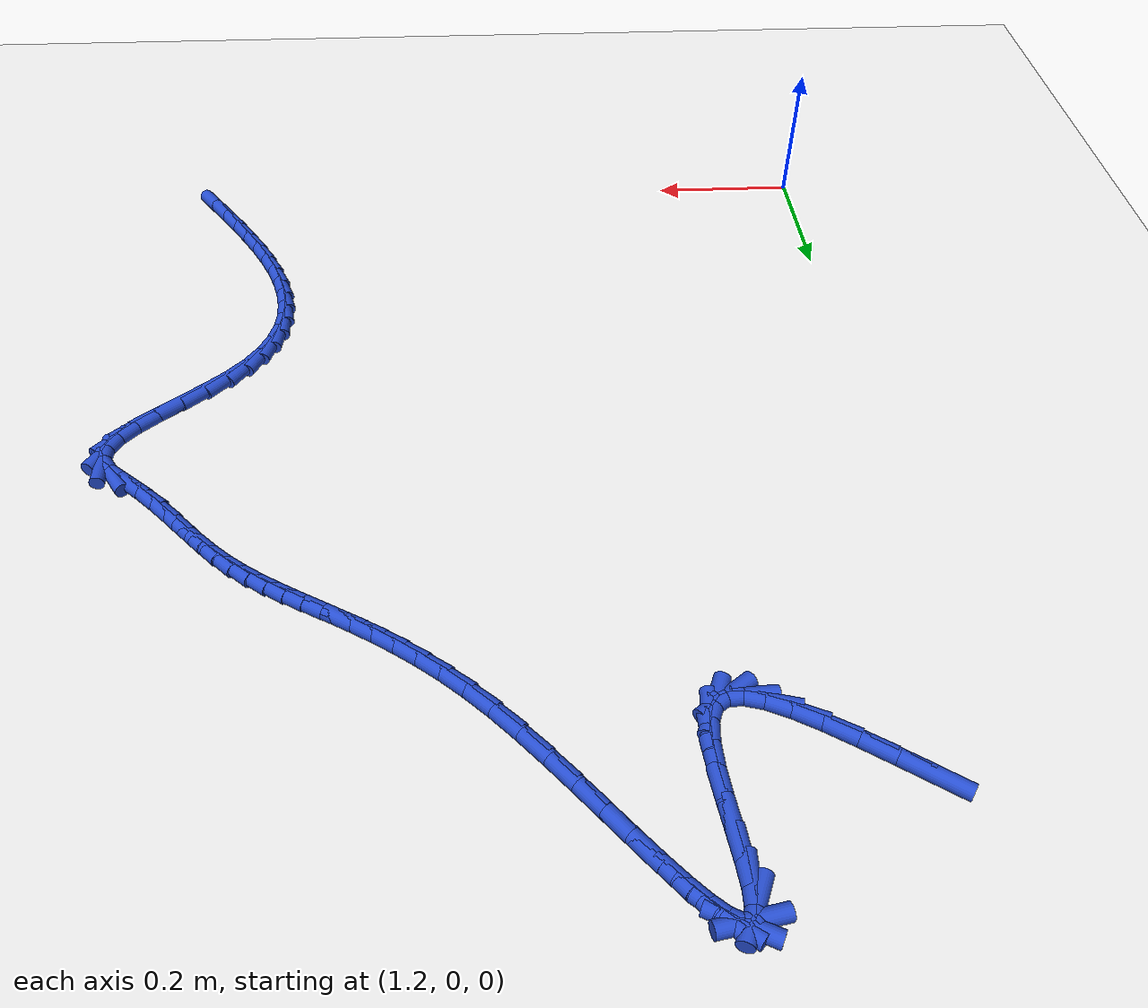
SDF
<sdf version="1.6">
 <world name="default">
  <model name="ground_plane">
   <static>1</static>
   <link name="link">
    <collision name="collision">
     <geometry><plane><normal>0 0 1</normal><size>100 100</size></plane></geometry>
     <surface><friction><ode><mu>100</mu><mu2>50</mu2></ode></friction></surface>
    </collision>
    <visual name="visual">
     <cast_shadows>0</cast_shadows>
     <geometry><plane><normal>0 0 1</normal><size>100 100</size></plane></geometry>
     <material>
      <script><uri>file://media/materials/scripts/gazebo.material</uri><name>Gazebo/WhiteGlow</name></script>
     </material>
    </visual>
   </link>
  </model>
  <model name="line">
   <link name="link_74">
    <pose>1.2723861363271114 1.1038740318503348 0.01 0 1.57 -0.6119505003149199</pose>
    <collision name="collision">
     <geometry><cylinder><radius>0.01</radius><length>0.08</length></cylinder></geometry>
    </collision>
    <visual name="visual">
     <material>
      <script><name>Gazebo/Blue</name><uri>file://media/materials/scripts/gazebo.material</uri></script>
     </material>
     <geometry><cylinder><radius>0.01</radius><length>0.08</length></cylinder></geometry>
    </visual>
   </link>
   <link name="link_75">
    <pose>1.3068017071767173 1.0797202851298688 0.01 0 1.57 -0.6044503724012126</pose>
    <collision name="collision">
     <geometry><cylinder><radius>0.01</radius><length>0.08</length></cylinder></geometry>
    </collision>
    <visual name="visual">
     <material>
      <script><name>Gazebo/Blue</name><uri>file://media/materials/scripts/gazebo.material</uri></script>
     </material>
     <geometry><cylinder><radius>0.01</radius><length>0.08</length></cylinder></geometry>
    </visual>
   </link>
   <link name="link_76">
    <pose>1.340529373568377 1.056424918402543 0.01 0 1.57 -0.578882292504587</pose>
    <collision name="collision">
     <geometry><cylinder><radius>0.01</radius><length>0.08</length></cylinder></geometry>
    </collision>
    <visual name="visual">
     <material>
      <script><name>Gazebo/Blue</name><uri>file://media/materials/scripts/gazebo.material</uri></script>
     </material>
     <geometry><cylinder><radius>0.01</radius><length>0.08</length></cylinder></geometry>
    </visual>
   </link>
   <link name="link_77">
    <pose>1.3728074712310607 1.0353288530888167 0.01 0 1.57 -0.5284921865191576</pose>
    <collision name="collision">
     <geometry><cylinder><radius>0.01</radius><length>0.08</length></cylinder></geometry>
    </collision>
    <visual name="visual">
     <material>
      <script><name>Gazebo/Blue</name><uri>file://media/materials/scripts/gazebo.material</uri></script>
     </material>
     <geometry><cylinder><radius>0.01</radius><length>0.08</length></cylinder></geometry>
    </visual>
   </link>
   <link name="link_78">
    <pose>1.402874335893737 1.0177730106091518 0.01 0 1.57 -0.43756166036817484</pose>
    <collision name="collision">
     <geometry><cylinder><radius>0.01</radius><length>0.08</length></cylinder></geometry>
    </collision>
    <visual name="visual">
     <material>
      <script><name>Gazebo/Blue</name><uri>file://media/materials/scripts/gazebo.material</uri></script>
     </material>
     <geometry><cylinder><radius>0.01</radius><length>0.08</length></cylinder></geometry>
    </visual>
   </link>
   <link name="link_79">
    <pose>1.4299683032853765 1.0050983123840094 0.01 0 1.57 -0.26951191261038004</pose>
    <collision name="collision">
     <geometry><cylinder><radius>0.01</radius><length>0.08</length></cylinder></geometry>
    </collision>
    <visual name="visual">
     <material>
      <script><name>Gazebo/Blue</name><uri>file://media/materials/scripts/gazebo.material</uri></script>
     </material>
     <geometry><cylinder><radius>0.01</radius><length>0.08</length></cylinder></geometry>
    </visual>
   </link>
   <link name="link_80">
    <pose>1.453327709134947 0.9986456798338501 0.01 0 1.57 0.058795747686479695</pose>
    <collision name="collision">
     <geometry><cylinder><radius>0.01</radius><length>0.08</length></cylinder></geometry>
    </collision>
    <visual name="visual">
     <material>
      <script><name>Gazebo/Blue</name><uri>file://media/materials/scripts/gazebo.material</uri></script>
     </material>
     <geometry><cylinder><radius>0.01</radius><length>0.08</length></cylinder></geometry>
    </visual>
   </link>
   <link name="link_81">
    <pose>1.472190889171419 0.9997560343791351 0.01 0 1.57 0.6345174181482096</pose>
    <collision name="collision">
     <geometry><cylinder><radius>0.01</radius><length>0.08</length></cylinder></geometry>
    </collision>
    <visual name="visual">
     <material>
      <script><name>Gazebo/Blue</name><uri>file://media/materials/scripts/gazebo.material</uri></script>
     </material>
     <geometry><cylinder><radius>0.01</radius><length>0.08</length></cylinder></geometry>
    </visual>
   </link>
   <link name="link_82">
    <pose>1.4857961791979561 1.0097702972987173 0.01 0 1.57 1.186503560602105</pose>
    <collision name="collision">
     <geometry><cylinder><radius>0.01</radius><length>0.08</length></cylinder></geometry>
    </collision>
    <visual name="visual">
     <material>
      <script><name>Gazebo/Blue</name><uri>file://media/materials/scripts/gazebo.material</uri></script>
     </material>
     <geometry><cylinder><radius>0.01</radius><length>0.08</length></cylinder></geometry>
    </visual>
   </link>
   <link name="link_83">
    <pose>1.4937245086214528 1.0293755176069175 0.01 0 1.57 1.4549673758504158</pose>
    <collision name="collision">
     <geometry><cylinder><radius>0.01</radius><length>0.08</length></cylinder></geometry>
    </collision>
    <visual name="visual">
     <material>
      <script><name>Gazebo/Blue</name><uri>file://media/materials/scripts/gazebo.material</uri></script>
     </material>
     <geometry><cylinder><radius>0.01</radius><length>0.08</length></cylinder></geometry>
    </visual>
   </link>
   <link name="link_84">
    <pose>1.4969025685845991 1.0566902308836934 0.01 0 1.57 -1.5611042230392178</pose>
    <collision name="collision">
     <geometry><cylinder><radius>0.01</radius><length>0.08</length></cylinder></geometry>
    </collision>
    <visual name="visual">
     <material>
      <script><name>Gazebo/Blue</name><uri>file://media/materials/scripts/gazebo.material</uri></script>
     </material>
     <geometry><cylinder><radius>0.01</radius><length>0.08</length></cylinder></geometry>
    </visual>
   </link>
   <link name="link_85">
    <pose>1.4965874476133965 1.0892023780835693 0.01 0 1.57 -1.498440108289049</pose>
    <collision name="collision">
     <geometry><cylinder><radius>0.01</radius><length>0.08</length></cylinder></geometry>
    </collision>
    <visual name="visual">
     <material>
      <script><name>Gazebo/Blue</name><uri>file://media/materials/scripts/gazebo.material</uri></script>
     </material>
     <geometry><cylinder><radius>0.01</radius><length>0.08</length></cylinder></geometry>
    </visual>
   </link>
   <link name="link_86">
    <pose>1.4940362342338436 1.124399900161071 0.01 0 1.57 -1.4713198855890846</pose>
    <collision name="collision">
     <geometry><cylinder><radius>0.01</radius><length>0.08</length></cylinder></geometry>
    </collision>
    <visual name="visual">
     <material>
      <script><name>Gazebo/Blue</name><uri>file://media/materials/scripts/gazebo.material</uri></script>
     </material>
     <geometry><cylinder><radius>0.01</radius><length>0.08</length></cylinder></geometry>
    </visual>
   </link>
   <link name="link_87">
    <pose>1.4905060169719413 1.159770738070722 0.01 0 1.57 -1.4726588773470441</pose>
    <collision name="collision">
     <geometry><cylinder><radius>0.01</radius><length>0.08</length></cylinder></geometry>
    </collision>
    <visual name="visual">
     <material>
      <script><name>Gazebo/Blue</name><uri>file://media/materials/scripts/gazebo.material</uri></script>
     </material>
     <geometry><cylinder><radius>0.01</radius><length>0.08</length></cylinder></geometry>
    </visual>
   </link>
   <link name="link_88">
    <pose>1.4872538843536889 1.1928028327670472 0.01 0 1.57 -1.5099460386976982</pose>
    <collision name="collision">
     <geometry><cylinder><radius>0.01</radius><length>0.08</length></cylinder></geometry>
    </collision>
    <visual name="visual">
     <material>
      <script><name>Gazebo/Blue</name><uri>file://media/materials/scripts/gazebo.material</uri></script>
     </material>
     <geometry><cylinder><radius>0.01</radius><length>0.08</length></cylinder></geometry>
    </visual>
   </link>
   <link name="link_89">
    <pose>1.4855369249050865 1.220984125204571 0.01 0 1.57 1.5191907321444418</pose>
    <collision name="collision">
     <geometry><cylinder><radius>0.01</radius><length>0.08</length></cylinder></geometry>
    </collision>
    <visual name="visual">
     <material>
      <script><name>Gazebo/Blue</name><uri>file://media/materials/scripts/gazebo.material</uri></script>
     </material>
     <geometry><cylinder><radius>0.01</radius><length>0.08</length></cylinder></geometry>
    </visual>
   </link>
   <link name="link_90">
    <pose>1.486612227152135 1.241802556337818 0.01 0 1.57 1.1539356549875914</pose>
    <collision name="collision">
     <geometry><cylinder><radius>0.01</radius><length>0.08</length></cylinder></geometry>
    </collision>
    <visual name="visual">
     <material>
      <script><name>Gazebo/Blue</name><uri>file://media/materials/scripts/gazebo.material</uri></script>
     </material>
     <geometry><cylinder><radius>0.01</radius><length>0.08</length></cylinder></geometry>
    </visual>
   </link>
   <link name="link_91">
    <pose>1.4915960642595616 1.2530575189170379 0.01 0 1.57 0.19783057746465163</pose>
    <collision name="collision">
     <geometry><cylinder><radius>0.01</radius><length>0.08</length></cylinder></geometry>
    </collision>
    <visual name="visual">
     <material>
      <script><name>Gazebo/Blue</name><uri>file://media/materials/scripts/gazebo.material</uri></script>
     </material>
     <geometry><cylinder><radius>0.01</radius><length>0.08</length></cylinder></geometry>
    </visual>
   </link>
   <link name="link_92">
    <pose>1.5005619505627554 1.2548547528620912 0.01 0 1.57 -0.478990189696421</pose>
    <collision name="collision">
     <geometry><cylinder><radius>0.01</radius><length>0.08</length></cylinder></geometry>
    </collision>
    <visual name="visual">
     <material>
      <script><name>Gazebo/Blue</name><uri>file://media/materials/scripts/gazebo.material</uri></script>
     </material>
     <geometry><cylinder><radius>0.01</radius><length>0.08</length></cylinder></geometry>
    </visual>
   </link>
   <link name="link_93">
    <pose>1.513115231269533 1.248335482532669 0.01 0 1.57 -0.7157208563802289</pose>
    <collision name="collision">
     <geometry><cylinder><radius>0.01</radius><length>0.08</length></cylinder></geometry>
    </collision>
    <visual name="visual">
     <material>
      <script><name>Gazebo/Blue</name><uri>file://media/materials/scripts/gazebo.material</uri></script>
     </material>
     <geometry><cylinder><radius>0.01</radius><length>0.08</length></cylinder></geometry>
    </visual>
   </link>
   <link name="link_94">
    <pose>1.528859026011163 1.234645854761447 0.01 0 1.57 -0.8161432700635202</pose>
    <collision name="collision">
     <geometry><cylinder><radius>0.01</radius><length>0.08</length></cylinder></geometry>
    </collision>
    <visual name="visual">
     <material>
      <script><name>Gazebo/Blue</name><uri>file://media/materials/scripts/gazebo.material</uri></script>
     </material>
     <geometry><cylinder><radius>0.01</radius><length>0.08</length></cylinder></geometry>
    </visual>
   </link>
   <link name="link_95">
    <pose>1.5473964544189154 1.2149320163811033 0.01 0 1.57 -0.8655693578644497</pose>
    <collision name="collision">
     <geometry><cylinder><radius>0.01</radius><length>0.08</length></cylinder></geometry>
    </collision>
    <visual name="visual">
     <material>
      <script><name>Gazebo/Blue</name><uri>file://media/materials/scripts/gazebo.material</uri></script>
     </material>
     <geometry><cylinder><radius>0.01</radius><length>0.08</length></cylinder></geometry>
    </visual>
   </link>
   <link name="link_96">
    <pose>1.5683306361240594 1.1903401142243148 0.01 0 1.57 -0.8901631645465553</pose>
    <collision name="collision">
     <geometry><cylinder><radius>0.01</radius><length>0.08</length></cylinder></geometry>
    </collision>
    <visual name="visual">
     <material>
      <script><name>Gazebo/Blue</name><uri>file://media/materials/scripts/gazebo.material</uri></script>
     </material>
     <geometry><cylinder><radius>0.01</radius><length>0.08</length></cylinder></geometry>
    </visual>
   </link>
   <link name="link_97">
    <pose>1.591264690757864 1.162016295123759 0.01 0 1.57 -0.8998271730030002</pose>
    <collision name="collision">
     <geometry><cylinder><radius>0.01</radius><length>0.08</length></cylinder></geometry>
    </collision>
    <visual name="visual">
     <material>
      <script><name>Gazebo/Blue</name><uri>file://media/materials/scripts/gazebo.material</uri></script>
     </material>
     <geometry><cylinder><radius>0.01</radius><length>0.08</length></cylinder></geometry>
    </visual>
   </link>
   <link name="link_98">
    <pose>1.6158017379515988 1.1311067059121118 0.01 0 1.57 -0.8986281213404743</pose>
    <collision name="collision">
     <geometry><cylinder><radius>0.01</radius><length>0.08</length></cylinder></geometry>
    </collision>
    <visual name="visual">
     <material>
      <script><name>Gazebo/Blue</name><uri>file://media/materials/scripts/gazebo.material</uri></script>
     </material>
     <geometry><cylinder><radius>0.01</radius><length>0.08</length></cylinder></geometry>
    </visual>
   </link>
   <link name="link_99">
    <pose>1.6415448973365334 1.098757493422052 0.01 0 1.57 -0.8879226271365618</pose>
    <collision name="collision">
     <geometry><cylinder><radius>0.01</radius><length>0.08</length></cylinder></geometry>
    </collision>
    <visual name="visual">
     <material>
      <script><name>Gazebo/Blue</name><uri>file://media/materials/scripts/gazebo.material</uri></script>
     </material>
     <geometry><cylinder><radius>0.01</radius><length>0.08</length></cylinder></geometry>
    </visual>
   </link>
   <link name="link_100">
    <pose>1.6680972885439367 1.0661148044862558 0.01 0 1.57 -0.867339971076115</pose>
    <collision name="collision">
     <geometry><cylinder><radius>0.01</radius><length>0.08</length></cylinder></geometry>
    </collision>
    <visual name="visual">
     <material>
      <script><name>Gazebo/Blue</name><uri>file://media/materials/scripts/gazebo.material</uri></script>
     </material>
     <geometry><cylinder><radius>0.01</radius><length>0.08</length></cylinder></geometry>
    </visual>
   </link>
   <link name="link_101">
    <pose>1.6950620312050781 1.0343247859374014 0.01 0 1.57 -0.8348718953270552</pose>
    <collision name="collision">
     <geometry><cylinder><radius>0.01</radius><length>0.08</length></cylinder></geometry>
    </collision>
    <visual name="visual">
     <material>
      <script><name>Gazebo/Blue</name><uri>file://media/materials/scripts/gazebo.material</uri></script>
     </material>
     <geometry><cylinder><radius>0.01</radius><length>0.08</length></cylinder></geometry>
    </visual>
   </link>
   <link name="link_102">
    <pose>1.7220422449512274 1.0045335846081644 0.01 0 1.57 -0.7880313874073062</pose>
    <collision name="collision">
     <geometry><cylinder><radius>0.01</radius><length>0.08</length></cylinder></geometry>
    </collision>
    <visual name="visual">
     <material>
      <script><name>Gazebo/Blue</name><uri>file://media/materials/scripts/gazebo.material</uri></script>
     </material>
     <geometry><cylinder><radius>0.01</radius><length>0.08</length></cylinder></geometry>
    </visual>
   </link>
   <link name="link_103">
    <pose>1.7486719073520927 0.9777633078804603 0.01 0 1.57 -0.7360472201844758</pose>
    <collision name="collision">
     <geometry><cylinder><radius>0.01</radius><length>0.08</length></cylinder></geometry>
    </collision>
    <visual name="visual">
     <material>
      <script><name>Gazebo/Blue</name><uri>file://media/materials/scripts/gazebo.material</uri></script>
     </material>
     <geometry><cylinder><radius>0.01</radius><length>0.08</length></cylinder></geometry>
    </visual>
   </link>
   <link name="link_104">
    <pose>1.774824756588054 0.9540722989974864 0.01 0 1.57 -0.6859232634885968</pose>
    <collision name="collision">
     <geometry><cylinder><radius>0.01</radius><length>0.08</length></cylinder></geometry>
    </collision>
    <visual name="visual">
     <material>
      <script><name>Gazebo/Blue</name><uri>file://media/materials/scripts/gazebo.material</uri></script>
     </material>
     <geometry><cylinder><radius>0.01</radius><length>0.08</length></cylinder></geometry>
    </visual>
   </link>
   <link name="link_105">
    <pose>1.8004867480712834 0.9330678223390473 0.01 0 1.57 -0.6395451484874632</pose>
    <collision name="collision">
     <geometry><cylinder><radius>0.01</radius><length>0.08</length></cylinder></geometry>
    </collision>
    <visual name="visual">
     <material>
      <script><name>Gazebo/Blue</name><uri>file://media/materials/scripts/gazebo.material</uri></script>
     </material>
     <geometry><cylinder><radius>0.01</radius><length>0.08</length></cylinder></geometry>
    </visual>
   </link>
   <link name="link_106">
    <pose>1.825644476833179 0.9143545712117832 0.01 0 1.57 -0.5988977735845974</pose>
    <collision name="collision">
     <geometry><cylinder><radius>0.01</radius><length>0.08</length></cylinder></geometry>
    </collision>
    <visual name="visual">
     <material>
      <script><name>Gazebo/Blue</name><uri>file://media/materials/scripts/gazebo.material</uri></script>
     </material>
     <geometry><cylinder><radius>0.01</radius><length>0.08</length></cylinder></geometry>
    </visual>
   </link>
   <link name="link_107">
    <pose>1.8502845379051402 0.897537238922335 0.01 0 1.57 -0.5659800625150856</pose>
    <collision name="collision">
     <geometry><cylinder><radius>0.01</radius><length>0.08</length></cylinder></geometry>
    </collision>
    <visual name="visual">
     <material>
      <script><name>Gazebo/Blue</name><uri>file://media/materials/scripts/gazebo.material</uri></script>
     </material>
     <geometry><cylinder><radius>0.01</radius><length>0.08</length></cylinder></geometry>
    </visual>
   </link>
   <link name="link_108">
    <pose>1.8743935263185643 0.8822205187773429 0.01 0 1.57 -0.5426851598940916</pose>
    <collision name="collision">
     <geometry><cylinder><radius>0.01</radius><length>0.08</length></cylinder></geometry>
    </collision>
    <visual name="visual">
     <material>
      <script><name>Gazebo/Blue</name><uri>file://media/materials/scripts/gazebo.material</uri></script>
     </material>
     <geometry><cylinder><radius>0.01</radius><length>0.08</length></cylinder></geometry>
    </visual>
   </link>
   <link name="link_109">
    <pose>1.8979580371048503 0.8680091040834471 0.01 0 1.57 -0.5306934967594604</pose>
    <collision name="collision">
     <geometry><cylinder><radius>0.01</radius><length>0.08</length></cylinder></geometry>
    </collision>
    <visual name="visual">
     <material>
      <script><name>Gazebo/Blue</name><uri>file://media/materials/scripts/gazebo.material</uri></script>
     </material>
     <geometry><cylinder><radius>0.01</radius><length>0.08</length></cylinder></geometry>
    </visual>
   </link>
   <link name="link_110">
    <pose>1.920964665295395 0.8545076881472875 0.01 0 1.57 -0.5313751259177955</pose>
    <collision name="collision">
     <geometry><cylinder><radius>0.01</radius><length>0.08</length></cylinder></geometry>
    </collision>
    <visual name="visual">
     <material>
      <script><name>Gazebo/Blue</name><uri>file://media/materials/scripts/gazebo.material</uri></script>
     </material>
     <geometry><cylinder><radius>0.01</radius><length>0.08</length></cylinder></geometry>
    </visual>
   </link>
   <link name="link_111">
    <pose>1.9434000059215981 0.8413209642755052 0.01 0 1.57 -0.545684265799643</pose>
    <collision name="collision">
     <geometry><cylinder><radius>0.01</radius><length>0.08</length></cylinder></geometry>
    </collision>
    <visual name="visual">
     <material>
      <script><name>Gazebo/Blue</name><uri>file://media/materials/scripts/gazebo.material</uri></script>
     </material>
     <geometry><cylinder><radius>0.01</radius><length>0.08</length></cylinder></geometry>
    </visual>
   </link>
   <link name="link_112">
    <pose>1.9652506540148573 0.82805362577474 0.01 0 1.57 -0.5740264924574382</pose>
    <collision name="collision">
     <geometry><cylinder><radius>0.01</radius><length>0.08</length></cylinder></geometry>
    </collision>
    <visual name="visual">
     <material>
      <script><name>Gazebo/Blue</name><uri>file://media/materials/scripts/gazebo.material</uri></script>
     </material>
     <geometry><cylinder><radius>0.01</radius><length>0.08</length></cylinder></geometry>
    </visual>
   </link>
   <link name="link_113">
    <pose>1.9865032046065707 0.8143103659516325 0.01 0 1.57 -0.6160951310143732</pose>
    <collision name="collision">
     <geometry><cylinder><radius>0.01</radius><length>0.08</length></cylinder></geometry>
    </collision>
    <visual name="visual">
     <material>
      <script><name>Gazebo/Blue</name><uri>file://media/materials/scripts/gazebo.material</uri></script>
     </material>
     <geometry><cylinder><radius>0.01</radius><length>0.08</length></cylinder></geometry>
    </visual>
   </link>
   <link name="link_114">
    <pose>2.0071442527281365 0.7996958781128229 0.01 0 1.57 -0.6707102142353062</pose>
    <collision name="collision">
     <geometry><cylinder><radius>0.01</radius><length>0.08</length></cylinder></geometry>
    </collision>
    <visual name="visual">
     <material>
      <script><name>Gazebo/Blue</name><uri>file://media/materials/scripts/gazebo.material</uri></script>
     </material>
     <geometry><cylinder><radius>0.01</radius><length>0.08</length></cylinder></geometry>
    </visual>
   </link>
   <link name="link_115">
    <pose>2.027160393410953 0.783814855564952 0.01 0 1.57 -0.7355899452010862</pose>
    <collision name="collision">
     <geometry><cylinder><radius>0.01</radius><length>0.08</length></cylinder></geometry>
    </collision>
    <visual name="visual">
     <material>
      <script><name>Gazebo/Blue</name><uri>file://media/materials/scripts/gazebo.material</uri></script>
     </material>
     <geometry><cylinder><radius>0.01</radius><length>0.08</length></cylinder></geometry>
    </visual>
   </link>
   <link name="link_116">
    <pose>2.0465399493032885 0.7662756781545236 0.01 0 1.57 -0.7958001604011611</pose>
    <collision name="collision">
     <geometry><cylinder><radius>0.01</radius><length>0.08</length></cylinder></geometry>
    </collision>
    <visual name="visual">
     <material>
      <script><name>Gazebo/Blue</name><uri>file://media/materials/scripts/gazebo.material</uri></script>
     </material>
     <geometry><cylinder><radius>0.01</radius><length>0.08</length></cylinder></geometry>
    </visual>
   </link>
   <link name="link_117">
    <pose>2.0654182717676055 0.7470004684481792 0.01 0 1.57 -0.8304179625611825</pose>
    <collision name="collision">
     <geometry><cylinder><radius>0.01</radius><length>0.08</length></cylinder></geometry>
    </collision>
    <visual name="visual">
     <material>
      <script><name>Gazebo/Blue</name><uri>file://media/materials/scripts/gazebo.material</uri></script>
     </material>
     <geometry><cylinder><radius>0.01</radius><length>0.08</length></cylinder></geometry>
    </visual>
   </link>
   <link name="link_118">
    <pose>2.084187821900946 0.7264599922346703 0.01 0 1.57 -0.8398675600185272</pose>
    <collision name="collision">
     <geometry><cylinder><radius>0.01</radius><length>0.08</length></cylinder></geometry>
    </collision>
    <visual name="visual">
     <material>
      <script><name>Gazebo/Blue</name><uri>file://media/materials/scripts/gazebo.material</uri></script>
     </material>
     <geometry><cylinder><radius>0.01</radius><length>0.08</length></cylinder></geometry>
    </visual>
   </link>
   <link name="link_119">
    <pose>2.1032669841007725 0.7051803327067973 0.01 0 1.57 -0.8261891880756608</pose>
    <collision name="collision">
     <geometry><cylinder><radius>0.01</radius><length>0.08</length></cylinder></geometry>
    </collision>
    <visual name="visual">
     <material>
      <script><name>Gazebo/Blue</name><uri>file://media/materials/scripts/gazebo.material</uri></script>
     </material>
     <geometry><cylinder><radius>0.01</radius><length>0.08</length></cylinder></geometry>
    </visual>
   </link>
   <link name="link_120">
    <pose>2.1230741427645485 0.6836875730573606 0.01 0 1.57 -0.7907676642977881</pose>
    <collision name="collision">
     <geometry><cylinder><radius>0.01</radius><length>0.08</length></cylinder></geometry>
    </collision>
    <visual name="visual">
     <material>
      <script><name>Gazebo/Blue</name><uri>file://media/materials/scripts/gazebo.material</uri></script>
     </material>
     <geometry><cylinder><radius>0.01</radius><length>0.08</length></cylinder></geometry>
    </visual>
   </link>
   <link name="link_121">
    <pose>2.1440276822897384 0.6625077964791609 0.01 0 1.57 -0.7346338608283032</pose>
    <collision name="collision">
     <geometry><cylinder><radius>0.01</radius><length>0.08</length></cylinder></geometry>
    </collision>
    <visual name="visual">
     <material>
      <script><name>Gazebo/Blue</name><uri>file://media/materials/scripts/gazebo.material</uri></script>
     </material>
     <geometry><cylinder><radius>0.01</radius><length>0.08</length></cylinder></geometry>
    </visual>
   </link>
   <link name="link_122">
    <pose>2.1665459730738506 0.6421670839773181 0.01 0 1.57 -0.7197138925447875</pose>
    <collision name="collision">
     <geometry><cylinder><radius>0.01</radius><length>0.08</length></cylinder></geometry>
    </collision>
    <visual name="visual">
     <material>
      <script><name>Gazebo/Blue</name><uri>file://media/materials/scripts/gazebo.material</uri></script>
     </material>
     <geometry><cylinder><radius>0.01</radius><length>0.08</length></cylinder></geometry>
    </visual>
   </link>
   <link name="link_123">
    <pose>2.188625450399612 0.6228130568879094 0.01 0 1.57 -1.0334399989981147</pose>
    <collision name="collision">
     <geometry><cylinder><radius>0.01</radius><length>0.08</length></cylinder></geometry>
    </collision>
    <visual name="visual">
     <material>
      <script><name>Gazebo/Blue</name><uri>file://media/materials/scripts/gazebo.material</uri></script>
     </material>
     <geometry><cylinder><radius>0.01</radius><length>0.08</length></cylinder></geometry>
    </visual>
   </link>
   <link name="link_124">
    <pose>2.2002633777664755 0.6032811458539283 0.01 0 1.57 1.50959831990929</pose>
    <collision name="collision">
     <geometry><cylinder><radius>0.01</radius><length>0.08</length></cylinder></geometry>
    </collision>
    <visual name="visual">
     <material>
      <script><name>Gazebo/Blue</name><uri>file://media/materials/scripts/gazebo.material</uri></script>
     </material>
     <geometry><cylinder><radius>0.01</radius><length>0.08</length></cylinder></geometry>
    </visual>
   </link>
   <link name="link_125">
    <pose>2.1990250976767136 0.5830724184891324 0.01 0 1.57 1.0593051660406347</pose>
    <collision name="collision">
     <geometry><cylinder><radius>0.01</radius><length>0.08</length></cylinder></geometry>
    </collision>
    <visual name="visual">
     <material>
      <script><name>Gazebo/Blue</name><uri>file://media/materials/scripts/gazebo.material</uri></script>
     </material>
     <geometry><cylinder><radius>0.01</radius><length>0.08</length></cylinder></geometry>
    </visual>
   </link>
   <link name="link_126">
    <pose>2.187301052726261 0.5621857847208541 0.01 0 1.57 0.8283558591554366</pose>
    <collision name="collision">
     <geometry><cylinder><radius>0.01</radius><length>0.08</length></cylinder></geometry>
    </collision>
    <visual name="visual">
     <material>
      <script><name>Gazebo/Blue</name><uri>file://media/materials/scripts/gazebo.material</uri></script>
     </material>
     <geometry><cylinder><radius>0.01</radius><length>0.08</length></cylinder></geometry>
    </visual>
   </link>
   <link name="link_127">
    <pose>2.1675162481441417 0.5406237205664322 0.01 0 1.57 0.7186523868041048</pose>
    <collision name="collision">
     <geometry><cylinder><radius>0.01</radius><length>0.08</length></cylinder></geometry>
    </collision>
    <visual name="visual">
     <material>
      <script><name>Gazebo/Blue</name><uri>file://media/materials/scripts/gazebo.material</uri></script>
     </material>
     <geometry><cylinder><radius>0.01</radius><length>0.08</length></cylinder></geometry>
    </visual>
   </link>
   <link name="link_128">
    <pose>2.1420956891593796 0.518388702043205 0.01 0 1.57 0.6747505331344525</pose>
    <collision name="collision">
     <geometry><cylinder><radius>0.01</radius><length>0.08</length></cylinder></geometry>
    </collision>
    <visual name="visual">
     <material>
      <script><name>Gazebo/Blue</name><uri>file://media/materials/scripts/gazebo.material</uri></script>
     </material>
     <geometry><cylinder><radius>0.01</radius><length>0.08</length></cylinder></geometry>
    </visual>
   </link>
   <link name="link_129">
    <pose>2.1134643810009983 0.4954832051685107 0.01 0 1.57 0.6755665624077822</pose>
    <collision name="collision">
     <geometry><cylinder><radius>0.01</radius><length>0.08</length></cylinder></geometry>
    </collision>
    <visual name="visual">
     <material>
      <script><name>Gazebo/Blue</name><uri>file://media/materials/scripts/gazebo.material</uri></script>
     </material>
     <geometry><cylinder><radius>0.01</radius><length>0.08</length></cylinder></geometry>
    </visual>
   </link>
   <link name="link_130">
    <pose>2.0840473288980204 0.4719097059596875 0.01 0 1.57 0.7174716497797956</pose>
    <collision name="collision">
     <geometry><cylinder><radius>0.01</radius><length>0.08</length></cylinder></geometry>
    </collision>
    <visual name="visual">
     <material>
      <script><name>Gazebo/Blue</name><uri>file://media/materials/scripts/gazebo.material</uri></script>
     </material>
     <geometry><cylinder><radius>0.01</radius><length>0.08</length></cylinder></geometry>
    </visual>
   </link>
   <link name="link_131">
    <pose>2.05626953807947 0.4476706804340741 0.01 0 1.57 0.8094995809410571</pose>
    <collision name="collision">
     <geometry><cylinder><radius>0.01</radius><length>0.08</length></cylinder></geometry>
    </collision>
    <visual name="visual">
     <material>
      <script><name>Gazebo/Blue</name><uri>file://media/materials/scripts/gazebo.material</uri></script>
     </material>
     <geometry><cylinder><radius>0.01</radius><length>0.08</length></cylinder></geometry>
    </visual>
   </link>
   <link name="link_132">
    <pose>2.032540048946863 0.4227688813191174 0.01 0 1.57 0.949279841206709</pose>
    <collision name="collision">
     <geometry><cylinder><radius>0.01</radius><length>0.08</length></cylinder></geometry>
    </collision>
    <visual name="visual">
     <material>
      <script><name>Gazebo/Blue</name><uri>file://media/materials/scripts/gazebo.material</uri></script>
     </material>
     <geometry><cylinder><radius>0.01</radius><length>0.08</length></cylinder></geometry>
    </visual>
   </link>
   <link name="link_133">
    <pose>2.0142453446297575 0.39722478479926226 0.01 0 1.57 1.1062965024512534</pose>
    <collision name="collision">
     <geometry><cylinder><radius>0.01</radius><length>0.08</length></cylinder></geometry>
    </collision>
    <visual name="visual">
     <material>
      <script><name>Gazebo/Blue</name><uri>file://media/materials/scripts/gazebo.material</uri></script>
     </material>
     <geometry><cylinder><radius>0.01</radius><length>0.08</length></cylinder></geometry>
    </visual>
   </link>
   <link name="link_134">
    <pose>2.0011485981082195 0.37108700305526043 0.01 0 1.57 1.2698854893328742</pose>
    <collision name="collision">
     <geometry><cylinder><radius>0.01</radius><length>0.08</length></cylinder></geometry>
    </collision>
    <visual name="visual">
     <material>
      <script><name>Gazebo/Blue</name><uri>file://media/materials/scripts/gazebo.material</uri></script>
     </material>
     <geometry><cylinder><radius>0.01</radius><length>0.08</length></cylinder></geometry>
    </visual>
   </link>
   <link name="link_135">
    <pose>1.9928687627625583 0.3444066479516914 0.01 0 1.57 1.4302598772771065</pose>
    <collision name="collision">
     <geometry><cylinder><radius>0.01</radius><length>0.08</length></cylinder></geometry>
    </collision>
    <visual name="visual">
     <material>
      <script><name>Gazebo/Blue</name><uri>file://media/materials/scripts/gazebo.material</uri></script>
     </material>
     <geometry><cylinder><radius>0.01</radius><length>0.08</length></cylinder></geometry>
    </visual>
   </link>
   <link name="link_136">
    <pose>1.9890247919730817 0.31723483135313424 0.01 0 1.57 -1.5631604518213058</pose>
    <collision name="collision">
     <geometry><cylinder><radius>0.01</radius><length>0.08</length></cylinder></geometry>
    </collision>
    <visual name="visual">
     <material>
      <script><name>Gazebo/Blue</name><uri>file://media/materials/scripts/gazebo.material</uri></script>
     </material>
     <geometry><cylinder><radius>0.01</radius><length>0.08</length></cylinder></geometry>
    </visual>
   </link>
   <link name="link_137">
    <pose>1.9892356391200978 0.2896226651241683 0.01 0 1.57 -1.4329467599743726</pose>
    <collision name="collision">
     <geometry><cylinder><radius>0.01</radius><length>0.08</length></cylinder></geometry>
    </collision>
    <visual name="visual">
     <material>
      <script><name>Gazebo/Blue</name><uri>file://media/materials/scripts/gazebo.material</uri></script>
     </material>
     <geometry><cylinder><radius>0.01</radius><length>0.08</length></cylinder></geometry>
    </visual>
   </link>
   <link name="link_138">
    <pose>1.9931202575839162 0.26162126112937256 0.01 0 1.57 -1.3227493418762217</pose>
    <collision name="collision">
     <geometry><cylinder><radius>0.01</radius><length>0.08</length></cylinder></geometry>
    </collision>
    <visual name="visual">
     <material>
      <script><name>Gazebo/Blue</name><uri>file://media/materials/scripts/gazebo.material</uri></script>
     </material>
     <geometry><cylinder><radius>0.01</radius><length>0.08</length></cylinder></geometry>
    </visual>
   </link>
   <link name="link_139">
    <pose>2.0002976007448448 0.23328173123332624 0.01 0 1.57 -1.231953107627001</pose>
    <collision name="collision">
     <geometry><cylinder><radius>0.01</radius><length>0.08</length></cylinder></geometry>
    </collision>
    <visual name="visual">
     <material>
      <script><name>Gazebo/Blue</name><uri>file://media/materials/scripts/gazebo.material</uri></script>
     </material>
     <geometry><cylinder><radius>0.01</radius><length>0.08</length></cylinder></geometry>
    </visual>
   </link>
   <link name="link_140">
    <pose>2.0103866219831916 0.2046551873006088 0.01 0 1.57 -1.1586088835777186</pose>
    <collision name="collision">
     <geometry><cylinder><radius>0.01</radius><length>0.08</length></cylinder></geometry>
    </collision>
    <visual name="visual">
     <material>
      <script><name>Gazebo/Blue</name><uri>file://media/materials/scripts/gazebo.material</uri></script>
     </material>
     <geometry><cylinder><radius>0.01</radius><length>0.08</length></cylinder></geometry>
    </visual>
   </link>
   <link name="link_141">
    <pose>2.0230062746792656 0.17579274119579852 0.01 0 1.57 -1.1004069363102122</pose>
    <collision name="collision">
     <geometry><cylinder><radius>0.01</radius><length>0.08</length></cylinder></geometry>
    </collision>
    <visual name="visual">
     <material>
      <script><name>Gazebo/Blue</name><uri>file://media/materials/scripts/gazebo.material</uri></script>
     </material>
     <geometry><cylinder><radius>0.01</radius><length>0.08</length></cylinder></geometry>
    </visual>
   </link>
   <link name="link_142">
    <pose>2.0377755122133756 0.14674550478347498 0.01 0 1.57 -1.0551974131024169</pose>
    <collision name="collision">
     <geometry><cylinder><radius>0.01</radius><length>0.08</length></cylinder></geometry>
    </collision>
    <visual name="visual">
     <material>
      <script><name>Gazebo/Blue</name><uri>file://media/materials/scripts/gazebo.material</uri></script>
     </material>
     <geometry><cylinder><radius>0.01</radius><length>0.08</length></cylinder></geometry>
    </visual>
   </link>
   <link name="link_143">
    <pose>2.0543132879658295 0.11756458992821728 0.01 0 1.57 -1.021201897765748</pose>
    <collision name="collision">
     <geometry><cylinder><radius>0.01</radius><length>0.08</length></cylinder></geometry>
    </collision>
    <visual name="visual">
     <material>
      <script><name>Gazebo/Blue</name><uri>file://media/materials/scripts/gazebo.material</uri></script>
     </material>
     <geometry><cylinder><radius>0.01</radius><length>0.08</length></cylinder></geometry>
    </visual>
   </link>
   <link name="link_144">
    <pose>2.0722385553169356 0.08830110849460461 0.01 0 1.57 -0.9970652037364199</pose>
    <collision name="collision">
     <geometry><cylinder><radius>0.01</radius><length>0.08</length></cylinder></geometry>
    </collision>
    <visual name="visual">
     <material>
      <script><name>Gazebo/Blue</name><uri>file://media/materials/scripts/gazebo.material</uri></script>
     </material>
     <geometry><cylinder><radius>0.01</radius><length>0.08</length></cylinder></geometry>
    </visual>
   </link>
   <link name="link_145">
    <pose>2.0911702676470028 0.059006172347216015 0.01 0 1.57 -0.9818422975118213</pose>
    <collision name="collision">
     <geometry><cylinder><radius>0.01</radius><length>0.08</length></cylinder></geometry>
    </collision>
    <visual name="visual">
     <material>
      <script><name>Gazebo/Blue</name><uri>file://media/materials/scripts/gazebo.material</uri></script>
     </material>
     <geometry><cylinder><radius>0.01</radius><length>0.08</length></cylinder></geometry>
    </visual>
   </link>
   <link name="link_146">
    <pose>2.11072737833634 0.0297308933506307 0.01 0 1.57 -0.9749696802402724</pose>
    <collision name="collision">
     <geometry><cylinder><radius>0.01</radius><length>0.08</length></cylinder></geometry>
    </collision>
    <visual name="visual">
     <material>
      <script><name>Gazebo/Blue</name><uri>file://media/materials/scripts/gazebo.material</uri></script>
     </material>
     <geometry><cylinder><radius>0.01</radius><length>0.08</length></cylinder></geometry>
    </visual>
   </link>
  </model>
 </world>
</sdf>
